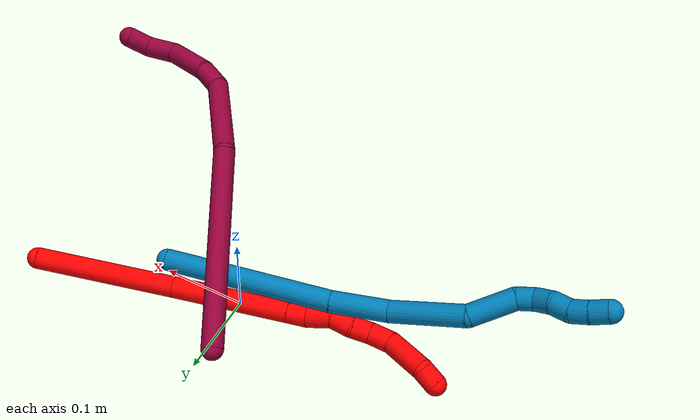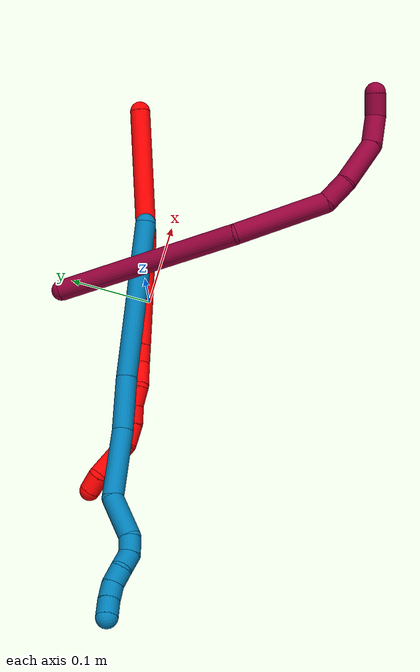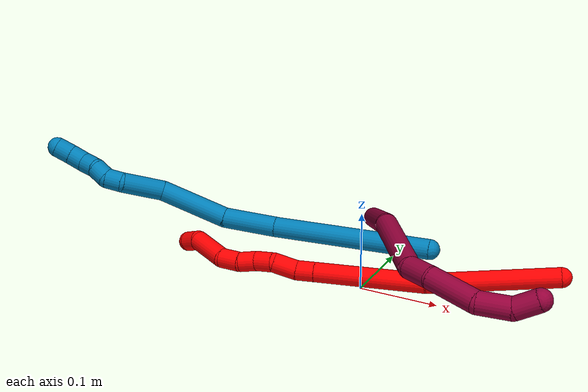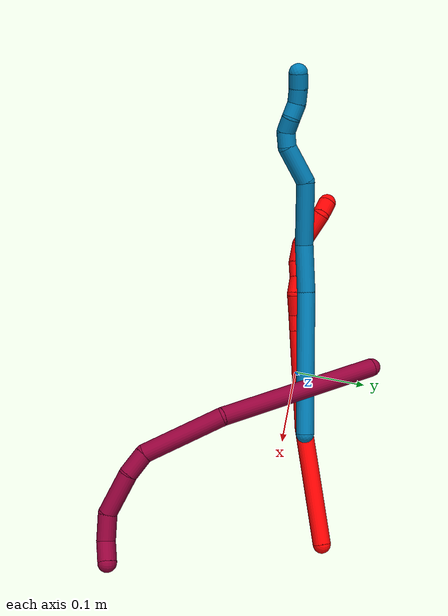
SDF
<sdf version="1.7">
 <world name="default">
  <model name="photoneo_s_sensor">
   <static>1</static>
   <pose>0 0 2 1.57079 1.57079 3.14159</pose>
   <link name="link">
    <inertial><mass>0.1</mass></inertial>
    <sensor name="sensor" type="depth">
     <update_rate>30</update_rate>
     <camera>
      <horizontal_fov>1.22</horizontal_fov>
      <image><width>1920</width><height>1200</height><format>B8G8R8</format></image>
      <clip><near>0.1</near><far>4</far></clip>
      <depth_camera><output>points</output></depth_camera>
     </camera>
     <plugin name="camera_plugin" filename="libgazebo_ros_depth_camera.so">
      <baseline>0.2</baseline>
      <alwaysOn>1</alwaysOn>
      <updateRate>0.0</updateRate>
      <cameraName>camera_ir</cameraName>
      <imageTopicName>/camera/color/image_raw</imageTopicName>
      <cameraInfoTopicName>/camera/color/camera_info</cameraInfoTopicName>
      <depthImageTopicName>/camera/depth/image_raw</depthImageTopicName>
      <depthImageCameraInfoTopicName>/camera/depth/camera_info</depthImageCameraInfoTopicName>
      <pointCloudTopicName>/camera/depth/points</pointCloudTopicName>
      <frameName>fr_optical</frameName>
      <pointCloudCutoff>0.1</pointCloudCutoff>
      <pointCloudCutoffMax>2.0</pointCloudCutoffMax>
      <distortionK1>0</distortionK1>
      <distortionK2>0</distortionK2>
      <distortionK3>0</distortionK3>
      <distortionT1>0</distortionT1>
      <distortionT2>0</distortionT2>
      <CxPrime>0</CxPrime>
      <Cx>0</Cx>
      <Cy>0</Cy>
      <focalLength>0</focalLength>
      <hackBaseline>0</hackBaseline>
     </plugin>
    </sensor>
   </link>
  </model>
  <model name="bin">
   <static>1</static>
   <link name="bottom">
    <collision name="collision-bottom">
     <pose>0 0 -0.01 0 -0 0</pose>
     <geometry><box><size>0.8 0.6 0.02</size></box></geometry>
     <surface>
      <friction><ode><mu>100</mu><mu2>100</mu2></ode></friction>
      <contact><collide_bitmask>65535</collide_bitmask></contact>
     </surface>
    </collision>
   </link>
   <link name="west_wall">
    <collision name="collision-west_wall">
     <pose>-0.41 0 0.1 0 -0 0</pose>
     <geometry><box><size>0.02 0.6 0.2</size></box></geometry>
     <surface>
      <friction><ode><mu>100</mu><mu2>100</mu2></ode></friction>
      <contact><collide_bitmask>65535</collide_bitmask></contact>
     </surface>
    </collision>
   </link>
   <link name="east_wall">
    <collision name="collision-east_wall">
     <pose>0.41 0 0.1 0 -0 0</pose>
     <geometry><box><size>0.02 0.6 0.2</size></box></geometry>
     <surface>
      <friction><ode><mu>100</mu><mu2>100</mu2></ode></friction>
      <contact><collide_bitmask>65535</collide_bitmask></contact>
     </surface>
    </collision>
   </link>
   <link name="south_wall">
    <collision name="collision-south_wall">
     <pose>0 -0.31 0.1 0 -0 0</pose>
     <geometry><box><size>0.8 0.02 0.2</size></box></geometry>
     <surface>
      <friction><ode><mu>100</mu><mu2>100</mu2></ode></friction>
      <contact><collide_bitmask>65535</collide_bitmask></contact>
     </surface>
    </collision>
   </link>
   <link name="north_wall">
    <collision name="collision-north_wall">
     <pose>0 0.31 0.1 0 -0 0</pose>
     <geometry><box><size>0.8 0.02 0.2</size></box></geometry>
     <surface>
      <friction><ode><mu>100</mu><mu2>100</mu2></ode></friction>
      <contact><collide_bitmask>65535</collide_bitmask></contact>
     </surface>
    </collision>
   </link>
  </model>
  <model name="2">
   <static>0</static>
   <link name="2">
    <collision name="collision-cylinder-e_1_1_4">
     <pose>-0.050805 -0.042242 0.048095 0.720696 -0.670873 -0.261217</pose>
     <geometry><cylinder><radius>0.0125</radius><length>0.163446</length></cylinder></geometry>
     <surface>
      <friction><ode><mu>1.16</mu><mu2>1.16</mu2><slip1>0</slip1><slip2>0</slip2></ode></friction>
      <contact><ode><kp>1e+06</kp><kd>1</kd><max_vel>0</max_vel><min_depth>0.001</min_depth></ode></contact>
     </surface>
    </collision>
    <visual name="visual-cylinder-e_1_1_4">
     <pose>-0.050805 -0.042242 0.048095 0.720696 -0.670873 -0.261217</pose>
     <geometry><cylinder><radius>0.0125</radius><length>0.163446</length></cylinder></geometry>
     <material><ambient>1 0 0 1</ambient></material>
    </visual>
    <collision name="collision-cylinder-e_2_4_5">
     <pose>-0.142047 -0.113597 0.144374 0.543505 -0.622906 -0.17893</pose>
     <geometry><cylinder><radius>0.0125</radius><length>0.138627</length></cylinder></geometry>
     <surface>
      <friction><ode><mu>1.16</mu><mu2>1.16</mu2><slip1>0</slip1><slip2>0</slip2></ode></friction>
      <contact><ode><kp>1e+06</kp><kd>1</kd><max_vel>0</max_vel><min_depth>0.001</min_depth></ode></contact>
     </surface>
    </collision>
    <visual name="visual-cylinder-e_2_4_5">
     <pose>-0.142047 -0.113597 0.144374 0.543505 -0.622906 -0.17893</pose>
     <geometry><cylinder><radius>0.0125</radius><length>0.138627</length></cylinder></geometry>
     <material><ambient>1 0 0 1</ambient></material>
    </visual>
    <collision name="collision-cylinder-e_3_5_6">
     <pose>-0.189291 -0.147559 0.200567 0.54446 -0.628536 -0.180981</pose>
     <geometry><cylinder><radius>0.0125</radius><length>0.023152</length></cylinder></geometry>
     <surface>
      <friction><ode><mu>1.16</mu><mu2>1.16</mu2><slip1>0</slip1><slip2>0</slip2></ode></friction>
      <contact><ode><kp>1e+06</kp><kd>1</kd><max_vel>0</max_vel><min_depth>0.001</min_depth></ode></contact>
     </surface>
    </collision>
    <visual name="visual-cylinder-e_3_5_6">
     <pose>-0.189291 -0.147559 0.200567 0.54446 -0.628536 -0.180981</pose>
     <geometry><cylinder><radius>0.0125</radius><length>0.023152</length></cylinder></geometry>
     <material><ambient>1 0 0 1</ambient></material>
    </visual>
    <collision name="collision-cylinder-e_4_6_7">
     <pose>-0.201625 -0.15825 0.221358 0.428647 -0.37481 -0.082505</pose>
     <geometry><cylinder><radius>0.0125</radius><length>0.030201</length></cylinder></geometry>
     <surface>
      <friction><ode><mu>1.16</mu><mu2>1.16</mu2><slip1>0</slip1><slip2>0</slip2></ode></friction>
      <contact><ode><kp>1e+06</kp><kd>1</kd><max_vel>0</max_vel><min_depth>0.001</min_depth></ode></contact>
     </surface>
    </collision>
    <visual name="visual-cylinder-e_4_6_7">
     <pose>-0.201625 -0.15825 0.221358 0.428647 -0.37481 -0.082505</pose>
     <geometry><cylinder><radius>0.0125</radius><length>0.030201</length></cylinder></geometry>
     <material><ambient>1 0 0 1</ambient></material>
    </visual>
    <collision name="collision-cylinder-e_5_7_8">
     <pose>-0.215981 -0.166853 0.241698 0.350323 -0.831529 -0.155953</pose>
     <geometry><cylinder><radius>0.0125</radius><length>0.023892</length></cylinder></geometry>
     <surface>
      <friction><ode><mu>1.16</mu><mu2>1.16</mu2><slip1>0</slip1><slip2>0</slip2></ode></friction>
      <contact><ode><kp>1e+06</kp><kd>1</kd><max_vel>0</max_vel><min_depth>0.001</min_depth></ode></contact>
     </surface>
    </collision>
    <visual name="visual-cylinder-e_5_7_8">
     <pose>-0.215981 -0.166853 0.241698 0.350323 -0.831529 -0.155953</pose>
     <geometry><cylinder><radius>0.0125</radius><length>0.023892</length></cylinder></geometry>
     <material><ambient>1 0 0 1</ambient></material>
    </visual>
    <collision name="collision-cylinder-e_6_8_9">
     <pose>-0.232592 -0.174588 0.255574 0.666995 -0.769238 -0.278644</pose>
     <geometry><cylinder><radius>0.0125</radius><length>0.022379</length></cylinder></geometry>
     <surface>
      <friction><ode><mu>1.16</mu><mu2>1.16</mu2><slip1>0</slip1><slip2>0</slip2></ode></friction>
      <contact><ode><kp>1e+06</kp><kd>1</kd><max_vel>0</max_vel><min_depth>0.001</min_depth></ode></contact>
     </surface>
    </collision>
    <visual name="visual-cylinder-e_6_8_9">
     <pose>-0.232592 -0.174588 0.255574 0.666995 -0.769238 -0.278644</pose>
     <geometry><cylinder><radius>0.0125</radius><length>0.022379</length></cylinder></geometry>
     <material><ambient>1 0 0 1</ambient></material>
    </visual>
    <collision name="collision-cylinder-e_7_9_10">
     <pose>-0.249132 -0.182058 0.271401 0.256696 -0.727594 -0.098197</pose>
     <geometry><cylinder><radius>0.0125</radius><length>0.026333</length></cylinder></geometry>
     <surface>
      <friction><ode><mu>1.16</mu><mu2>1.16</mu2><slip1>0</slip1><slip2>0</slip2></ode></friction>
      <contact><ode><kp>1e+06</kp><kd>1</kd><max_vel>0</max_vel><min_depth>0.001</min_depth></ode></contact>
     </surface>
    </collision>
    <visual name="visual-cylinder-e_7_9_10">
     <pose>-0.249132 -0.182058 0.271401 0.256696 -0.727594 -0.098197</pose>
     <geometry><cylinder><radius>0.0125</radius><length>0.026333</length></cylinder></geometry>
     <material><ambient>1 0 0 1</ambient></material>
    </visual>
    <collision name="collision-cylinder-e_8_10_11">
     <pose>-0.273363 -0.178949 0.300107 -0.284104 -0.658564 0.097665</pose>
     <geometry><cylinder><radius>0.0125</radius><length>0.05057</length></cylinder></geometry>
     <surface>
      <friction><ode><mu>1.16</mu><mu2>1.16</mu2><slip1>0</slip1><slip2>0</slip2></ode></friction>
      <contact><ode><kp>1e+06</kp><kd>1</kd><max_vel>0</max_vel><min_depth>0.001</min_depth></ode></contact>
     </surface>
    </collision>
    <visual name="visual-cylinder-e_8_10_11">
     <pose>-0.273363 -0.178949 0.300107 -0.284104 -0.658564 0.097665</pose>
     <geometry><cylinder><radius>0.0125</radius><length>0.05057</length></cylinder></geometry>
     <material><ambient>1 0 0 1</ambient></material>
    </visual>
    <collision name="collision-cylinder-e_9_11_2">
     <pose>-0.298665 -0.173022 0.323519 -0.076141 -1.16442 0.050139</pose>
     <geometry><cylinder><radius>0.0125</radius><length>0.021399</length></cylinder></geometry>
     <surface>
      <friction><ode><mu>1.16</mu><mu2>1.16</mu2><slip1>0</slip1><slip2>0</slip2></ode></friction>
      <contact><ode><kp>1e+06</kp><kd>1</kd><max_vel>0</max_vel><min_depth>0.001</min_depth></ode></contact>
     </surface>
    </collision>
    <visual name="visual-cylinder-e_9_11_2">
     <pose>-0.298665 -0.173022 0.323519 -0.076141 -1.16442 0.050139</pose>
     <geometry><cylinder><radius>0.0125</radius><length>0.021399</length></cylinder></geometry>
     <material><ambient>1 0 0 1</ambient></material>
    </visual>
    <collision name="collision-sphere-2">
     <pose>-0.308493 -0.1727 0.327737 0 -0 0</pose>
     <geometry><sphere><radius>0.0125</radius></sphere></geometry>
     <surface>
      <friction><ode><mu>1.16</mu><mu2>1.16</mu2><slip1>0</slip1><slip2>0</slip2></ode></friction>
      <contact><ode><kp>1e+06</kp><kd>1</kd><max_vel>0</max_vel><min_depth>0.001</min_depth></ode></contact>
     </surface>
    </collision>
    <visual name="visual-sphere-2">
     <pose>-0.308493 -0.1727 0.327737 0 -0 0</pose>
     <geometry><sphere><radius>0.0125</radius></sphere></geometry>
     <material><ambient>1 0 0 1</ambient></material>
    </visual>
    <collision name="collision-sphere-11">
     <pose>-0.288837 -0.173344 0.319302 0 -0 0</pose>
     <geometry><sphere><radius>0.0125</radius></sphere></geometry>
     <surface>
      <friction><ode><mu>1.16</mu><mu2>1.16</mu2><slip1>0</slip1><slip2>0</slip2></ode></friction>
      <contact><ode><kp>1e+06</kp><kd>1</kd><max_vel>0</max_vel><min_depth>0.001</min_depth></ode></contact>
     </surface>
    </collision>
    <visual name="visual-sphere-11">
     <pose>-0.288837 -0.173344 0.319302 0 -0 0</pose>
     <geometry><sphere><radius>0.0125</radius></sphere></geometry>
     <material><ambient>1 0 0 1</ambient></material>
    </visual>
    <collision name="collision-sphere-10">
     <pose>-0.257889 -0.184554 0.280911 0 -0 0</pose>
     <geometry><sphere><radius>0.0125</radius></sphere></geometry>
     <surface>
      <friction><ode><mu>1.16</mu><mu2>1.16</mu2><slip1>0</slip1><slip2>0</slip2></ode></friction>
      <contact><ode><kp>1e+06</kp><kd>1</kd><max_vel>0</max_vel><min_depth>0.001</min_depth></ode></contact>
     </surface>
    </collision>
    <visual name="visual-sphere-10">
     <pose>-0.257889 -0.184554 0.280911 0 -0 0</pose>
     <geometry><sphere><radius>0.0125</radius></sphere></geometry>
     <material><ambient>1 0 0 1</ambient></material>
    </visual>
    <collision name="collision-sphere-9">
     <pose>-0.240375 -0.179561 0.26189 0 -0 0</pose>
     <geometry><sphere><radius>0.0125</radius></sphere></geometry>
     <surface>
      <friction><ode><mu>1.16</mu><mu2>1.16</mu2><slip1>0</slip1><slip2>0</slip2></ode></friction>
      <contact><ode><kp>1e+06</kp><kd>1</kd><max_vel>0</max_vel><min_depth>0.001</min_depth></ode></contact>
     </surface>
    </collision>
    <visual name="visual-sphere-9">
     <pose>-0.240375 -0.179561 0.26189 0 -0 0</pose>
     <geometry><sphere><radius>0.0125</radius></sphere></geometry>
     <material><ambient>1 0 0 1</ambient></material>
    </visual>
    <collision name="collision-sphere-4">
     <pose>-0.10161 -0.084484 0.096191 0 -0 0</pose>
     <geometry><sphere><radius>0.0125</radius></sphere></geometry>
     <surface>
      <friction><ode><mu>1.16</mu><mu2>1.16</mu2><slip1>0</slip1><slip2>0</slip2></ode></friction>
      <contact><ode><kp>1e+06</kp><kd>1</kd><max_vel>0</max_vel><min_depth>0.001</min_depth></ode></contact>
     </surface>
    </collision>
    <visual name="visual-sphere-4">
     <pose>-0.10161 -0.084484 0.096191 0 -0 0</pose>
     <geometry><sphere><radius>0.0125</radius></sphere></geometry>
     <material><ambient>1 0 0 1</ambient></material>
    </visual>
    <collision name="collision-sphere-1">
     <geometry><sphere><radius>0.0125</radius></sphere></geometry>
     <surface>
      <friction><ode><mu>1.16</mu><mu2>1.16</mu2><slip1>0</slip1><slip2>0</slip2></ode></friction>
      <contact><ode><kp>1e+06</kp><kd>1</kd><max_vel>0</max_vel><min_depth>0.001</min_depth></ode></contact>
     </surface>
    </collision>
    <visual name="visual-sphere-1">
     <geometry><sphere><radius>0.0125</radius></sphere></geometry>
     <material><ambient>1 0 0 1</ambient></material>
    </visual>
    <collision name="collision-sphere-8">
     <pose>-0.224809 -0.169615 0.249258 0 -0 0</pose>
     <geometry><sphere><radius>0.0125</radius></sphere></geometry>
     <surface>
      <friction><ode><mu>1.16</mu><mu2>1.16</mu2><slip1>0</slip1><slip2>0</slip2></ode></friction>
      <contact><ode><kp>1e+06</kp><kd>1</kd><max_vel>0</max_vel><min_depth>0.001</min_depth></ode></contact>
     </surface>
    </collision>
    <visual name="visual-sphere-8">
     <pose>-0.224809 -0.169615 0.249258 0 -0 0</pose>
     <geometry><sphere><radius>0.0125</radius></sphere></geometry>
     <material><ambient>1 0 0 1</ambient></material>
    </visual>
    <collision name="collision-sphere-5">
     <pose>-0.182484 -0.142709 0.192558 0 -0 0</pose>
     <geometry><sphere><radius>0.0125</radius></sphere></geometry>
     <surface>
      <friction><ode><mu>1.16</mu><mu2>1.16</mu2><slip1>0</slip1><slip2>0</slip2></ode></friction>
      <contact><ode><kp>1e+06</kp><kd>1</kd><max_vel>0</max_vel><min_depth>0.001</min_depth></ode></contact>
     </surface>
    </collision>
    <visual name="visual-sphere-5">
     <pose>-0.182484 -0.142709 0.192558 0 -0 0</pose>
     <geometry><sphere><radius>0.0125</radius></sphere></geometry>
     <material><ambient>1 0 0 1</ambient></material>
    </visual>
    <collision name="collision-sphere-6">
     <pose>-0.196097 -0.152409 0.208577 0 -0 0</pose>
     <geometry><sphere><radius>0.0125</radius></sphere></geometry>
     <surface>
      <friction><ode><mu>1.16</mu><mu2>1.16</mu2><slip1>0</slip1><slip2>0</slip2></ode></friction>
      <contact><ode><kp>1e+06</kp><kd>1</kd><max_vel>0</max_vel><min_depth>0.001</min_depth></ode></contact>
     </surface>
    </collision>
    <visual name="visual-sphere-6">
     <pose>-0.196097 -0.152409 0.208577 0 -0 0</pose>
     <geometry><sphere><radius>0.0125</radius></sphere></geometry>
     <material><ambient>1 0 0 1</ambient></material>
    </visual>
    <collision name="collision-sphere-7">
     <pose>-0.207153 -0.164091 0.234139 0 -0 0</pose>
     <geometry><sphere><radius>0.0125</radius></sphere></geometry>
     <surface>
      <friction><ode><mu>1.16</mu><mu2>1.16</mu2><slip1>0</slip1><slip2>0</slip2></ode></friction>
      <contact><ode><kp>1e+06</kp><kd>1</kd><max_vel>0</max_vel><min_depth>0.001</min_depth></ode></contact>
     </surface>
    </collision>
    <visual name="visual-sphere-7">
     <pose>-0.207153 -0.164091 0.234139 0 -0 0</pose>
     <geometry><sphere><radius>0.0125</radius></sphere></geometry>
     <material><ambient>1 0 0 1</ambient></material>
    </visual>
    <inertial>
     <pose>-0.151216 -0.112574 0.159889 0 -0 0</pose>
     <mass>0.5</mass>
     <inertia>
      <ixx>0.00035</ixx>
      <ixy>0</ixy>
      <ixz>0</ixz>
      <iyy>0.000415</iyy>
      <iyz>0</iyz>
      <izz>0.000693</izz>
     </inertia>
    </inertial>
   </link>
   <pose>0.228571 0.079014 0.031714 0.231037 -0.78471 -0.362884</pose>
  </model>
  <model name="8">
   <static>0</static>
   <link name="8">
    <collision name="collision-cylinder-e_1_1_4">
     <pose>0.03705 0.007357 0.109288 -0.067213 0.326166 -0.011064</pose>
     <geometry><cylinder><radius>0.0125</radius><length>0.231263</length></cylinder></geometry>
     <surface>
      <friction><ode><mu>1.16</mu><mu2>1.16</mu2><slip1>0</slip1><slip2>0</slip2></ode></friction>
      <contact><ode><kp>1e+06</kp><kd>1</kd><max_vel>0</max_vel><min_depth>0.001</min_depth></ode></contact>
     </surface>
    </collision>
    <visual name="visual-cylinder-e_1_1_4">
     <pose>0.03705 0.007357 0.109288 -0.067213 0.326166 -0.011064</pose>
     <geometry><cylinder><radius>0.0125</radius><length>0.231263</length></cylinder></geometry>
     <material><ambient>0.584314 0 0.227451 1</ambient></material>
    </visual>
    <collision name="collision-cylinder-e_2_4_5">
     <pose>0.097246 -0.002784 0.266406 0.350697 0.426563 0.076703</pose>
     <geometry><cylinder><radius>0.0125</radius><length>0.111888</length></cylinder></geometry>
     <surface>
      <friction><ode><mu>1.16</mu><mu2>1.16</mu2><slip1>0</slip1><slip2>0</slip2></ode></friction>
      <contact><ode><kp>1e+06</kp><kd>1</kd><max_vel>0</max_vel><min_depth>0.001</min_depth></ode></contact>
     </surface>
    </collision>
    <visual name="visual-cylinder-e_2_4_5">
     <pose>0.097246 -0.002784 0.266406 0.350697 0.426563 0.076703</pose>
     <geometry><cylinder><radius>0.0125</radius><length>0.111888</length></cylinder></geometry>
     <material><ambient>0.584314 0 0.227451 1</ambient></material>
    </visual>
    <collision name="collision-cylinder-e_3_5_6">
     <pose>0.133396 -0.024676 0.323781 0.431489 0.89122 0.2086</pose>
     <geometry><cylinder><radius>0.0125</radius><length>0.033435</length></cylinder></geometry>
     <surface>
      <friction><ode><mu>1.16</mu><mu2>1.16</mu2><slip1>0</slip1><slip2>0</slip2></ode></friction>
      <contact><ode><kp>1e+06</kp><kd>1</kd><max_vel>0</max_vel><min_depth>0.001</min_depth></ode></contact>
     </surface>
    </collision>
    <visual name="visual-cylinder-e_3_5_6">
     <pose>0.133396 -0.024676 0.323781 0.431489 0.89122 0.2086</pose>
     <geometry><cylinder><radius>0.0125</radius><length>0.033435</length></cylinder></geometry>
     <material><ambient>0.584314 0 0.227451 1</ambient></material>
    </visual>
    <collision name="collision-cylinder-e_4_6_7">
     <pose>0.170927 -0.040477 0.344425 0.799044 0.995155 0.45088</pose>
     <geometry><cylinder><radius>0.0125</radius><length>0.058478</length></cylinder></geometry>
     <surface>
      <friction><ode><mu>1.16</mu><mu2>1.16</mu2><slip1>0</slip1><slip2>0</slip2></ode></friction>
      <contact><ode><kp>1e+06</kp><kd>1</kd><max_vel>0</max_vel><min_depth>0.001</min_depth></ode></contact>
     </surface>
    </collision>
    <visual name="visual-cylinder-e_4_6_7">
     <pose>0.170927 -0.040477 0.344425 0.799044 0.995155 0.45088</pose>
     <geometry><cylinder><radius>0.0125</radius><length>0.058478</length></cylinder></geometry>
     <material><ambient>0.584314 0 0.227451 1</ambient></material>
    </visual>
    <collision name="collision-cylinder-e_5_7_8">
     <pose>0.213508 -0.055598 0.355736 1.51403 1.36764 1.31236</pose>
     <geometry><cylinder><radius>0.0125</radius><length>0.036867</length></cylinder></geometry>
     <surface>
      <friction><ode><mu>1.16</mu><mu2>1.16</mu2><slip1>0</slip1><slip2>0</slip2></ode></friction>
      <contact><ode><kp>1e+06</kp><kd>1</kd><max_vel>0</max_vel><min_depth>0.001</min_depth></ode></contact>
     </surface>
    </collision>
    <visual name="visual-cylinder-e_5_7_8">
     <pose>0.213508 -0.055598 0.355736 1.51403 1.36764 1.31236</pose>
     <geometry><cylinder><radius>0.0125</radius><length>0.036867</length></cylinder></geometry>
     <material><ambient>0.584314 0 0.227451 1</ambient></material>
    </visual>
    <collision name="collision-cylinder-e_6_8_2">
     <pose>0.245068 -0.055515 0.355551 -1.67472 1.29541 -1.39685</pose>
     <geometry><cylinder><radius>0.0125</radius><length>0.028069</length></cylinder></geometry>
     <surface>
      <friction><ode><mu>1.16</mu><mu2>1.16</mu2><slip1>0</slip1><slip2>0</slip2></ode></friction>
      <contact><ode><kp>1e+06</kp><kd>1</kd><max_vel>0</max_vel><min_depth>0.001</min_depth></ode></contact>
     </surface>
    </collision>
    <visual name="visual-cylinder-e_6_8_2">
     <pose>0.245068 -0.055515 0.355551 -1.67472 1.29541 -1.39685</pose>
     <geometry><cylinder><radius>0.0125</radius><length>0.028069</length></cylinder></geometry>
     <material><ambient>0.584314 0 0.227451 1</ambient></material>
    </visual>
    <collision name="collision-sphere-2">
     <pose>0.258574 -0.05172 0.355155 0 -0 0</pose>
     <geometry><sphere><radius>0.0125</radius></sphere></geometry>
     <surface>
      <friction><ode><mu>1.16</mu><mu2>1.16</mu2><slip1>0</slip1><slip2>0</slip2></ode></friction>
      <contact><ode><kp>1e+06</kp><kd>1</kd><max_vel>0</max_vel><min_depth>0.001</min_depth></ode></contact>
     </surface>
    </collision>
    <visual name="visual-sphere-2">
     <pose>0.258574 -0.05172 0.355155 0 -0 0</pose>
     <geometry><sphere><radius>0.0125</radius></sphere></geometry>
     <material><ambient>0.584314 0 0.227451 1</ambient></material>
    </visual>
    <collision name="collision-sphere-4">
     <pose>0.0741 0.014713 0.218575 0 -0 0</pose>
     <geometry><sphere><radius>0.0125</radius></sphere></geometry>
     <surface>
      <friction><ode><mu>1.16</mu><mu2>1.16</mu2><slip1>0</slip1><slip2>0</slip2></ode></friction>
      <contact><ode><kp>1e+06</kp><kd>1</kd><max_vel>0</max_vel><min_depth>0.001</min_depth></ode></contact>
     </surface>
    </collision>
    <visual name="visual-sphere-4">
     <pose>0.0741 0.014713 0.218575 0 -0 0</pose>
     <geometry><sphere><radius>0.0125</radius></sphere></geometry>
     <material><ambient>0.584314 0 0.227451 1</ambient></material>
    </visual>
    <collision name="collision-sphere-1">
     <geometry><sphere><radius>0.0125</radius></sphere></geometry>
     <surface>
      <friction><ode><mu>1.16</mu><mu2>1.16</mu2><slip1>0</slip1><slip2>0</slip2></ode></friction>
      <contact><ode><kp>1e+06</kp><kd>1</kd><max_vel>0</max_vel><min_depth>0.001</min_depth></ode></contact>
     </surface>
    </collision>
    <visual name="visual-sphere-1">
     <geometry><sphere><radius>0.0125</radius></sphere></geometry>
     <material><ambient>0.584314 0 0.227451 1</ambient></material>
    </visual>
    <collision name="collision-sphere-8">
     <pose>0.231562 -0.059311 0.355947 0 -0 0</pose>
     <geometry><sphere><radius>0.0125</radius></sphere></geometry>
     <surface>
      <friction><ode><mu>1.16</mu><mu2>1.16</mu2><slip1>0</slip1><slip2>0</slip2></ode></friction>
      <contact><ode><kp>1e+06</kp><kd>1</kd><max_vel>0</max_vel><min_depth>0.001</min_depth></ode></contact>
     </surface>
    </collision>
    <visual name="visual-sphere-8">
     <pose>0.231562 -0.059311 0.355947 0 -0 0</pose>
     <geometry><sphere><radius>0.0125</radius></sphere></geometry>
     <material><ambient>0.584314 0 0.227451 1</ambient></material>
    </visual>
    <collision name="collision-sphere-5">
     <pose>0.120393 -0.020282 0.314238 0 -0 0</pose>
     <geometry><sphere><radius>0.0125</radius></sphere></geometry>
     <surface>
      <friction><ode><mu>1.16</mu><mu2>1.16</mu2><slip1>0</slip1><slip2>0</slip2></ode></friction>
      <contact><ode><kp>1e+06</kp><kd>1</kd><max_vel>0</max_vel><min_depth>0.001</min_depth></ode></contact>
     </surface>
    </collision>
    <visual name="visual-sphere-5">
     <pose>0.120393 -0.020282 0.314238 0 -0 0</pose>
     <geometry><sphere><radius>0.0125</radius></sphere></geometry>
     <material><ambient>0.584314 0 0.227451 1</ambient></material>
    </visual>
    <collision name="collision-sphere-6">
     <pose>0.1464 -0.02907 0.333324 0 -0 0</pose>
     <geometry><sphere><radius>0.0125</radius></sphere></geometry>
     <surface>
      <friction><ode><mu>1.16</mu><mu2>1.16</mu2><slip1>0</slip1><slip2>0</slip2></ode></friction>
      <contact><ode><kp>1e+06</kp><kd>1</kd><max_vel>0</max_vel><min_depth>0.001</min_depth></ode></contact>
     </surface>
    </collision>
    <visual name="visual-sphere-6">
     <pose>0.1464 -0.02907 0.333324 0 -0 0</pose>
     <geometry><sphere><radius>0.0125</radius></sphere></geometry>
     <material><ambient>0.584314 0 0.227451 1</ambient></material>
    </visual>
    <collision name="collision-sphere-7">
     <pose>0.195453 -0.051885 0.355525 0 -0 0</pose>
     <geometry><sphere><radius>0.0125</radius></sphere></geometry>
     <surface>
      <friction><ode><mu>1.16</mu><mu2>1.16</mu2><slip1>0</slip1><slip2>0</slip2></ode></friction>
      <contact><ode><kp>1e+06</kp><kd>1</kd><max_vel>0</max_vel><min_depth>0.001</min_depth></ode></contact>
     </surface>
    </collision>
    <visual name="visual-sphere-7">
     <pose>0.195453 -0.051885 0.355525 0 -0 0</pose>
     <geometry><sphere><radius>0.0125</radius></sphere></geometry>
     <material><ambient>0.584314 0 0.227451 1</ambient></material>
    </visual>
    <inertial>
     <pose>0.09731 -0.010821 0.218287 0 -0 0</pose>
     <mass>0.5</mass>
     <inertia>
      <ixx>0.00113</ixx>
      <ixy>0</ixy>
      <ixz>0</ixz>
      <iyy>0.00118</iyy>
      <iyz>0</iyz>
      <izz>-0.000403</izz>
     </inertia>
    </inertial>
   </link>
   <pose>-0.027769 0.099313 0.050153 1.2814 -0.178018 0.195636</pose>
  </model>
  <model name="9">
   <static>0</static>
   <link name="9">
    <collision name="collision-cylinder-e_1_1_4">
     <pose>-0.078345 0.040888 -0.040597 -2.35263 -0.936673 1.76445</pose>
     <geometry><cylinder><radius>0.0125</radius><length>0.194504</length></cylinder></geometry>
     <surface>
      <friction><ode><mu>1.16</mu><mu2>1.16</mu2><slip1>0</slip1><slip2>0</slip2></ode></friction>
      <contact><ode><kp>1e+06</kp><kd>1</kd><max_vel>0</max_vel><min_depth>0.001</min_depth></ode></contact>
     </surface>
    </collision>
    <visual name="visual-cylinder-e_1_1_4">
     <pose>-0.078345 0.040888 -0.040597 -2.35263 -0.936673 1.76445</pose>
     <geometry><cylinder><radius>0.0125</radius><length>0.194504</length></cylinder></geometry>
     <material><ambient>0 0.490196 0.709804 1</ambient></material>
    </visual>
    <collision name="collision-cylinder-e_2_4_5">
     <pose>-0.182039 0.098051 -0.094258 -2.24715 -0.881982 1.55473</pose>
     <geometry><cylinder><radius>0.0125</radius><length>0.065669</length></cylinder></geometry>
     <surface>
      <friction><ode><mu>1.16</mu><mu2>1.16</mu2><slip1>0</slip1><slip2>0</slip2></ode></friction>
      <contact><ode><kp>1e+06</kp><kd>1</kd><max_vel>0</max_vel><min_depth>0.001</min_depth></ode></contact>
     </surface>
    </collision>
    <visual name="visual-cylinder-e_2_4_5">
     <pose>-0.182039 0.098051 -0.094258 -2.24715 -0.881982 1.55473</pose>
     <geometry><cylinder><radius>0.0125</radius><length>0.065669</length></cylinder></geometry>
     <material><ambient>0 0.490196 0.709804 1</ambient></material>
    </visual>
    <collision name="collision-cylinder-e_3_5_6">
     <pose>-0.233543 0.140785 -0.129298 -2.26393 -0.650167 1.24553</pose>
     <geometry><cylinder><radius>0.0125</radius><length>0.08642</length></cylinder></geometry>
     <surface>
      <friction><ode><mu>1.16</mu><mu2>1.16</mu2><slip1>0</slip1><slip2>0</slip2></ode></friction>
      <contact><ode><kp>1e+06</kp><kd>1</kd><max_vel>0</max_vel><min_depth>0.001</min_depth></ode></contact>
     </surface>
    </collision>
    <visual name="visual-cylinder-e_3_5_6">
     <pose>-0.233543 0.140785 -0.129298 -2.26393 -0.650167 1.24553</pose>
     <geometry><cylinder><radius>0.0125</radius><length>0.08642</length></cylinder></geometry>
     <material><ambient>0 0.490196 0.709804 1</ambient></material>
    </visual>
    <collision name="collision-cylinder-e_4_6_7">
     <pose>-0.274646 0.189134 -0.152762 -1.63865 -0.59804 0.637358</pose>
     <geometry><cylinder><radius>0.0125</radius><length>0.053099</length></cylinder></geometry>
     <surface>
      <friction><ode><mu>1.16</mu><mu2>1.16</mu2><slip1>0</slip1><slip2>0</slip2></ode></friction>
      <contact><ode><kp>1e+06</kp><kd>1</kd><max_vel>0</max_vel><min_depth>0.001</min_depth></ode></contact>
     </surface>
    </collision>
    <visual name="visual-cylinder-e_4_6_7">
     <pose>-0.274646 0.189134 -0.152762 -1.63865 -0.59804 0.637358</pose>
     <geometry><cylinder><radius>0.0125</radius><length>0.053099</length></cylinder></geometry>
     <material><ambient>0 0.490196 0.709804 1</ambient></material>
    </visual>
    <collision name="collision-cylinder-e_5_7_8">
     <pose>-0.296608 0.2171 -0.158234 -2.15125 -0.767756 1.28434</pose>
     <geometry><cylinder><radius>0.0125</radius><length>0.020196</length></cylinder></geometry>
     <surface>
      <friction><ode><mu>1.16</mu><mu2>1.16</mu2><slip1>0</slip1><slip2>0</slip2></ode></friction>
      <contact><ode><kp>1e+06</kp><kd>1</kd><max_vel>0</max_vel><min_depth>0.001</min_depth></ode></contact>
     </surface>
    </collision>
    <visual name="visual-cylinder-e_5_7_8">
     <pose>-0.296608 0.2171 -0.158234 -2.15125 -0.767756 1.28434</pose>
     <geometry><cylinder><radius>0.0125</radius><length>0.020196</length></cylinder></geometry>
     <material><ambient>0 0.490196 0.709804 1</ambient></material>
    </visual>
    <collision name="collision-cylinder-e_6_8_9">
     <pose>-0.307516 0.228102 -0.170063 -2.58084 -0.398006 1.22191</pose>
     <geometry><cylinder><radius>0.0125</radius><length>0.020097</length></cylinder></geometry>
     <surface>
      <friction><ode><mu>1.16</mu><mu2>1.16</mu2><slip1>0</slip1><slip2>0</slip2></ode></friction>
      <contact><ode><kp>1e+06</kp><kd>1</kd><max_vel>0</max_vel><min_depth>0.001</min_depth></ode></contact>
     </surface>
    </collision>
    <visual name="visual-cylinder-e_6_8_9">
     <pose>-0.307516 0.228102 -0.170063 -2.58084 -0.398006 1.22191</pose>
     <geometry><cylinder><radius>0.0125</radius><length>0.020097</length></cylinder></geometry>
     <material><ambient>0 0.490196 0.709804 1</ambient></material>
    </visual>
    <collision name="collision-cylinder-e_7_9_10">
     <pose>-0.317675 0.235795 -0.185202 -2.77906 -0.676585 2.18106</pose>
     <geometry><cylinder><radius>0.0125</radius><length>0.02001</length></cylinder></geometry>
     <surface>
      <friction><ode><mu>1.16</mu><mu2>1.16</mu2><slip1>0</slip1><slip2>0</slip2></ode></friction>
      <contact><ode><kp>1e+06</kp><kd>1</kd><max_vel>0</max_vel><min_depth>0.001</min_depth></ode></contact>
     </surface>
    </collision>
    <visual name="visual-cylinder-e_7_9_10">
     <pose>-0.317675 0.235795 -0.185202 -2.77906 -0.676585 2.18106</pose>
     <geometry><cylinder><radius>0.0125</radius><length>0.02001</length></cylinder></geometry>
     <material><ambient>0 0.490196 0.709804 1</ambient></material>
    </visual>
    <collision name="collision-cylinder-e_8_10_11">
     <pose>-0.329171 0.244692 -0.198418 -2.33893 -0.55051 1.17441</pose>
     <geometry><cylinder><radius>0.0125</radius><length>0.020002</length></cylinder></geometry>
     <surface>
      <friction><ode><mu>1.16</mu><mu2>1.16</mu2><slip1>0</slip1><slip2>0</slip2></ode></friction>
      <contact><ode><kp>1e+06</kp><kd>1</kd><max_vel>0</max_vel><min_depth>0.001</min_depth></ode></contact>
     </surface>
    </collision>
    <visual name="visual-cylinder-e_8_10_11">
     <pose>-0.329171 0.244692 -0.198418 -2.33893 -0.55051 1.17441</pose>
     <geometry><cylinder><radius>0.0125</radius><length>0.020002</length></cylinder></geometry>
     <material><ambient>0 0.490196 0.709804 1</ambient></material>
    </visual>
    <collision name="collision-cylinder-e_9_11_2">
     <pose>-0.339556 0.257738 -0.209405 -2.20287 -0.541275 1.00116</pose>
     <geometry><cylinder><radius>0.0125</radius><length>0.020003</length></cylinder></geometry>
     <surface>
      <friction><ode><mu>1.16</mu><mu2>1.16</mu2><slip1>0</slip1><slip2>0</slip2></ode></friction>
      <contact><ode><kp>1e+06</kp><kd>1</kd><max_vel>0</max_vel><min_depth>0.001</min_depth></ode></contact>
     </surface>
    </collision>
    <visual name="visual-cylinder-e_9_11_2">
     <pose>-0.339556 0.257738 -0.209405 -2.20287 -0.541275 1.00116</pose>
     <geometry><cylinder><radius>0.0125</radius><length>0.020003</length></cylinder></geometry>
     <material><ambient>0 0.490196 0.709804 1</ambient></material>
    </visual>
    <collision name="collision-sphere-2">
     <pose>-0.344709 0.264654 -0.214469 0 -0 0</pose>
     <geometry><sphere><radius>0.0125</radius></sphere></geometry>
     <surface>
      <friction><ode><mu>1.16</mu><mu2>1.16</mu2><slip1>0</slip1><slip2>0</slip2></ode></friction>
      <contact><ode><kp>1e+06</kp><kd>1</kd><max_vel>0</max_vel><min_depth>0.001</min_depth></ode></contact>
     </surface>
    </collision>
    <visual name="visual-sphere-2">
     <pose>-0.344709 0.264654 -0.214469 0 -0 0</pose>
     <geometry><sphere><radius>0.0125</radius></sphere></geometry>
     <material><ambient>0 0.490196 0.709804 1</ambient></material>
    </visual>
    <collision name="collision-sphere-11">
     <pose>-0.334403 0.250822 -0.20434 0 -0 0</pose>
     <geometry><sphere><radius>0.0125</radius></sphere></geometry>
     <surface>
      <friction><ode><mu>1.16</mu><mu2>1.16</mu2><slip1>0</slip1><slip2>0</slip2></ode></friction>
      <contact><ode><kp>1e+06</kp><kd>1</kd><max_vel>0</max_vel><min_depth>0.001</min_depth></ode></contact>
     </surface>
    </collision>
    <visual name="visual-sphere-11">
     <pose>-0.334403 0.250822 -0.20434 0 -0 0</pose>
     <geometry><sphere><radius>0.0125</radius></sphere></geometry>
     <material><ambient>0 0.490196 0.709804 1</ambient></material>
    </visual>
    <collision name="collision-sphere-10">
     <pose>-0.323939 0.238562 -0.192496 0 -0 0</pose>
     <geometry><sphere><radius>0.0125</radius></sphere></geometry>
     <surface>
      <friction><ode><mu>1.16</mu><mu2>1.16</mu2><slip1>0</slip1><slip2>0</slip2></ode></friction>
      <contact><ode><kp>1e+06</kp><kd>1</kd><max_vel>0</max_vel><min_depth>0.001</min_depth></ode></contact>
     </surface>
    </collision>
    <visual name="visual-sphere-10">
     <pose>-0.323939 0.238562 -0.192496 0 -0 0</pose>
     <geometry><sphere><radius>0.0125</radius></sphere></geometry>
     <material><ambient>0 0.490196 0.709804 1</ambient></material>
    </visual>
    <collision name="collision-sphere-9">
     <pose>-0.31141 0.233028 -0.177908 0 -0 0</pose>
     <geometry><sphere><radius>0.0125</radius></sphere></geometry>
     <surface>
      <friction><ode><mu>1.16</mu><mu2>1.16</mu2><slip1>0</slip1><slip2>0</slip2></ode></friction>
      <contact><ode><kp>1e+06</kp><kd>1</kd><max_vel>0</max_vel><min_depth>0.001</min_depth></ode></contact>
     </surface>
    </collision>
    <visual name="visual-sphere-9">
     <pose>-0.31141 0.233028 -0.177908 0 -0 0</pose>
     <geometry><sphere><radius>0.0125</radius></sphere></geometry>
     <material><ambient>0 0.490196 0.709804 1</ambient></material>
    </visual>
    <collision name="collision-sphere-4">
     <pose>-0.15669 0.081775 -0.081194 0 -0 0</pose>
     <geometry><sphere><radius>0.0125</radius></sphere></geometry>
     <surface>
      <friction><ode><mu>1.16</mu><mu2>1.16</mu2><slip1>0</slip1><slip2>0</slip2></ode></friction>
      <contact><ode><kp>1e+06</kp><kd>1</kd><max_vel>0</max_vel><min_depth>0.001</min_depth></ode></contact>
     </surface>
    </collision>
    <visual name="visual-sphere-4">
     <pose>-0.15669 0.081775 -0.081194 0 -0 0</pose>
     <geometry><sphere><radius>0.0125</radius></sphere></geometry>
     <material><ambient>0 0.490196 0.709804 1</ambient></material>
    </visual>
    <collision name="collision-sphere-1">
     <geometry><sphere><radius>0.0125</radius></sphere></geometry>
     <surface>
      <friction><ode><mu>1.16</mu><mu2>1.16</mu2><slip1>0</slip1><slip2>0</slip2></ode></friction>
      <contact><ode><kp>1e+06</kp><kd>1</kd><max_vel>0</max_vel><min_depth>0.001</min_depth></ode></contact>
     </surface>
    </collision>
    <visual name="visual-sphere-1">
     <geometry><sphere><radius>0.0125</radius></sphere></geometry>
     <material><ambient>0 0.490196 0.709804 1</ambient></material>
    </visual>
    <collision name="collision-sphere-8">
     <pose>-0.303621 0.223176 -0.162219 0 -0 0</pose>
     <geometry><sphere><radius>0.0125</radius></sphere></geometry>
     <surface>
      <friction><ode><mu>1.16</mu><mu2>1.16</mu2><slip1>0</slip1><slip2>0</slip2></ode></friction>
      <contact><ode><kp>1e+06</kp><kd>1</kd><max_vel>0</max_vel><min_depth>0.001</min_depth></ode></contact>
     </surface>
    </collision>
    <visual name="visual-sphere-8">
     <pose>-0.303621 0.223176 -0.162219 0 -0 0</pose>
     <geometry><sphere><radius>0.0125</radius></sphere></geometry>
     <material><ambient>0 0.490196 0.709804 1</ambient></material>
    </visual>
    <collision name="collision-sphere-5">
     <pose>-0.207387 0.114327 -0.107322 0 -0 0</pose>
     <geometry><sphere><radius>0.0125</radius></sphere></geometry>
     <surface>
      <friction><ode><mu>1.16</mu><mu2>1.16</mu2><slip1>0</slip1><slip2>0</slip2></ode></friction>
      <contact><ode><kp>1e+06</kp><kd>1</kd><max_vel>0</max_vel><min_depth>0.001</min_depth></ode></contact>
     </surface>
    </collision>
    <visual name="visual-sphere-5">
     <pose>-0.207387 0.114327 -0.107322 0 -0 0</pose>
     <geometry><sphere><radius>0.0125</radius></sphere></geometry>
     <material><ambient>0 0.490196 0.709804 1</ambient></material>
    </visual>
    <collision name="collision-sphere-6">
     <pose>-0.259699 0.167243 -0.151275 0 -0 0</pose>
     <geometry><sphere><radius>0.0125</radius></sphere></geometry>
     <surface>
      <friction><ode><mu>1.16</mu><mu2>1.16</mu2><slip1>0</slip1><slip2>0</slip2></ode></friction>
      <contact><ode><kp>1e+06</kp><kd>1</kd><max_vel>0</max_vel><min_depth>0.001</min_depth></ode></contact>
     </surface>
    </collision>
    <visual name="visual-sphere-6">
     <pose>-0.259699 0.167243 -0.151275 0 -0 0</pose>
     <geometry><sphere><radius>0.0125</radius></sphere></geometry>
     <material><ambient>0 0.490196 0.709804 1</ambient></material>
    </visual>
    <collision name="collision-sphere-7">
     <pose>-0.289594 0.211025 -0.15425 0 -0 0</pose>
     <geometry><sphere><radius>0.0125</radius></sphere></geometry>
     <surface>
      <friction><ode><mu>1.16</mu><mu2>1.16</mu2><slip1>0</slip1><slip2>0</slip2></ode></friction>
      <contact><ode><kp>1e+06</kp><kd>1</kd><max_vel>0</max_vel><min_depth>0.001</min_depth></ode></contact>
     </surface>
    </collision>
    <visual name="visual-sphere-7">
     <pose>-0.289594 0.211025 -0.15425 0 -0 0</pose>
     <geometry><sphere><radius>0.0125</radius></sphere></geometry>
     <material><ambient>0 0.490196 0.709804 1</ambient></material>
    </visual>
    <inertial>
     <pose>-0.187725 0.120676 -0.103697 0 -0 0</pose>
     <mass>0.5</mass>
     <inertia>
      <ixx>0.000361</ixx>
      <ixy>0</ixy>
      <ixz>0</ixz>
      <iyy>0.000921</iyy>
      <iyz>0</iyz>
      <izz>0.000225</izz>
     </inertia>
    </inertial>
   </link>
   <pose>0.078715 0.02522 0.059491 2.06776 -0.593181 0.345239</pose>
  </model>
 </world>
</sdf>
